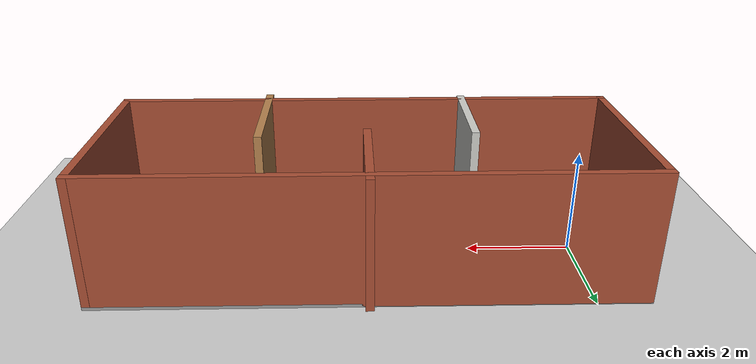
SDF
<sdf version='1.6'>
  <world name='default'>
    <plugin name="ros_interface_plugin" filename="librotors_gazebo_ros_interface_plugin.so"/>
    <light name='sun' type='directional'>
      <cast_shadows>1</cast_shadows>
      <pose frame=''>0 0 10 0 -0 0</pose>
      <diffuse>0.8 0.8 0.8 1</diffuse>
      <specular>0.2 0.2 0.2 1</specular>
      <attenuation>
        <range>1000</range>
        <constant>0.9</constant>
        <linear>0.01</linear>
        <quadratic>0.001</quadratic>
      </attenuation>
      <direction>-0.5 0.1 -0.9</direction>
    </light>
    <model name='bounding'>
    <pose frame=''>4 0 0 0 0 0</pose>
     <link name='link_0'>
      <pose frame=''>0 0 2.6 0 -0 0</pose>
      <inertial>
        <mass>1</mass>
        <inertia>
          <ixx>0.166667</ixx>
          <ixy>0</ixy>
          <ixz>0</ixz>
          <iyy>0.166667</iyy>
          <iyz>0</iyz>
          <izz>0.166667</izz>
        </inertia>
        <pose frame=''>0 0 0 0 -0 0</pose>
      </inertial>
      <self_collide>0</self_collide>
      <kinematic>0</kinematic>
      <visual name='ModelPreview_4::link_0::visual_1'>
        <pose frame=''>0 0 -0.1 0 -0 0</pose>
        <geometry>
          <box>
            <size>10 4 0.1</size>
          </box>
        </geometry>
        <material>
          <lighting>1</lighting>
          <script>
            <uri>file://media/materials/scripts/gazebo.material</uri>
            <name>Gazebo/Grey</name>
          </script>
          <ambient>0.3 0.3 0.3 1</ambient>
          <diffuse>0.7 0.7 0.7 1</diffuse>
          <specular>0.01 0.01 0.01 1</specular>
          <emissive>0 0 0 1</emissive>
          <shader type='vertex'>
            <normal_map>__default__</normal_map>
          </shader>
        </material>
        <cast_shadows>1</cast_shadows>
        <transparency>1</transparency>
      </visual>
      <visual name='visual'>
        <pose frame=''>0 0 0 0 -0 0</pose>
        <geometry>
          <box>
            <size>10 4 0.1</size>
          </box>
        </geometry>
        <material>
          <lighting>1</lighting>
          <script>
            <uri>file://media/materials/scripts/gazebo.material</uri>
            <name>Gazebo/Grey</name>
          </script>
          <ambient>0.3 0.3 0.3 1</ambient>
          <diffuse>0.7 0.7 0.7 1</diffuse>
          <specular>0.01 0.01 0.01 1</specular>
          <emissive>0 0 0 1</emissive>
          <shader type='vertex'>
            <normal_map>__default__</normal_map>
          </shader>
        </material>
        <cast_shadows>1</cast_shadows>
        <transparency>1</transparency>
      </visual>
      <collision name='collision'>
        <laser_retro>0</laser_retro>
        <max_contacts>10</max_contacts>
        <pose frame=''>0 0 0 0 -0 0</pose>
        <geometry>
          <box>
            <size>4 4 0.1</size>
          </box>
        </geometry>
        <surface>
          <friction>
            <ode>
              <mu>1</mu>
              <mu2>1</mu2>
              <fdir1>0 0 0</fdir1>
              <slip1>0</slip1>
              <slip2>0</slip2>
            </ode>
            <torsional>
              <coefficient>1</coefficient>
              <patch_radius>0</patch_radius>
              <surface_radius>0</surface_radius>
              <use_patch_radius>1</use_patch_radius>
              <ode>
                <slip>0</slip>
              </ode>
            </torsional>
          </friction>
          <bounce>
            <restitution_coefficient>0</restitution_coefficient>
            <threshold>1e+06</threshold>
          </bounce>
          <contact>
            <collide_without_contact>0</collide_without_contact>
            <collide_without_contact_bitmask>1</collide_without_contact_bitmask>
            <collide_bitmask>1</collide_bitmask>
            <ode>
              <soft_cfm>0</soft_cfm>
              <soft_erp>0.2</soft_erp>
              <kp>1e+13</kp>
              <kd>1</kd>
              <max_vel>0.01</max_vel>
              <min_depth>0</min_depth>
            </ode>
            <bullet>
              <split_impulse>1</split_impulse>
              <split_impulse_penetration_threshold>-0.01</split_impulse_penetration_threshold>
              <soft_cfm>0</soft_cfm>
              <soft_erp>0.2</soft_erp>
              <kp>1e+13</kp>
              <kd>1</kd>
            </bullet>
          </contact>
        </surface>
      </collision>
    </link>
    <link name='link_0_clone'>
      <pose frame=''>0 0 -0 0 -0 0</pose>
      <inertial>
        <mass>1</mass>
        <inertia>
          <ixx>0.166667</ixx>
          <ixy>0</ixy>
          <ixz>0</ixz>
          <iyy>0.166667</iyy>
          <iyz>0</iyz>
          <izz>0.166667</izz>
        </inertia>
        <pose frame=''>0 0 0 0 -0 0</pose>
      </inertial>
      <self_collide>0</self_collide>
      <kinematic>0</kinematic>
      <gravity>1</gravity>
      <visual name='ModelPreview_4::link_0_clone::visual_1'>
        <pose frame=''>0 0 0 0 -0 0</pose>
        <geometry>
          <box>
            <size>10 4 0.1</size>
          </box>
        </geometry>
        <material>
          <lighting>1</lighting>
          <script>
            <uri>file://media/materials/scripts/gazebo.material</uri>
            <name>Gazebo/Grey</name>
          </script>
          <ambient>1 1 1 1</ambient>
          <diffuse>1 1 1 1</diffuse>
          <specular>0.01 0.01 0.01 1</specular>
          <emissive>0 0 0 1</emissive>
          <shader type='vertex'>
            <normal_map>__default__</normal_map>
          </shader>
        </material>
        <cast_shadows>1</cast_shadows>
        <transparency>0</transparency>
      </visual>
      <collision name='collision'>
        <laser_retro>0</laser_retro>
        <max_contacts>10</max_contacts>
        <pose frame=''>0 0 0 0 -0 0</pose>
        <geometry>
          <box>
            <size>10 4 0.1</size>
          </box>
        </geometry>
        <surface>
          <friction>
            <ode>
              <mu>1</mu>
              <mu2>1</mu2>
              <fdir1>0 0 0</fdir1>
              <slip1>0</slip1>
              <slip2>0</slip2>
            </ode>
            <torsional>
              <coefficient>1</coefficient>
              <patch_radius>0</patch_radius>
              <surface_radius>0</surface_radius>
              <use_patch_radius>1</use_patch_radius>
              <ode>
                <slip>0</slip>
              </ode>
            </torsional>
          </friction>
          <bounce>
            <restitution_coefficient>0</restitution_coefficient>
            <threshold>1e+06</threshold>
          </bounce>
          <contact>
            <collide_without_contact>0</collide_without_contact>
            <collide_without_contact_bitmask>1</collide_without_contact_bitmask>
            <collide_bitmask>1</collide_bitmask>
            <ode>
              <soft_cfm>0</soft_cfm>
              <soft_erp>0.2</soft_erp>
              <kp>1e+13</kp>
              <kd>1</kd>
              <max_vel>0.01</max_vel>
              <min_depth>0</min_depth>
            </ode>
            <bullet>
              <split_impulse>1</split_impulse>
              <split_impulse_penetration_threshold>-0.01</split_impulse_penetration_threshold>
              <soft_cfm>0</soft_cfm>
              <soft_erp>0.2</soft_erp>
              <kp>1e+13</kp>
              <kd>1</kd>
            </bullet>
          </contact>
        </surface>
      </collision>
    </link>
    <link name='Wall_0'>
      <collision name='Wall_0_Collision'>
        <geometry>
          <box>
            <size>10 0.15 2.5</size>
          </box>
        </geometry>
        <pose frame=''>0 0 1.25 0 -0 0</pose>
      </collision>
      <visual name='Wall_0_Visual'>
        <pose frame=''>0 0 1.25 0 -0 0</pose>
        <geometry>
          <box>
            <size>10 0.15 2.5</size>
          </box>
        </geometry>
        <material>
          <script>
            <uri>file://media/materials/scripts/gazebo.material</uri>
            <name>Gazebo/Bricks</name>
          </script>
          <ambient>1 1 1 1</ambient>
        </material>
        <meta>
          <layer>0</layer>
        </meta>
      </visual>
      <pose frame=''>0 1.925 0 0 -0 3.14159</pose>
    </link>
    <link name='Wall_1'>
      <collision name='Wall_1_Collision'>
        <geometry>
          <box>
            <size>4 0.15 2.5</size>
          </box>
        </geometry>
        <pose frame=''>0 0 1.25 0 -0 0</pose>
      </collision>
      <visual name='Wall_1_Visual'>
        <pose frame=''>0 0 1.25 0 -0 0</pose>
        <geometry>
          <box>
            <size>4 0.15 2.5</size>
          </box>
        </geometry>
        <material>
          <script>
            <uri>file://media/materials/scripts/gazebo.material</uri>
            <name>Gazebo/Bricks</name>
          </script>
          <ambient>1 1 1 1</ambient>
        </material>
        <meta>
          <layer>0</layer>
        </meta>
      </visual>
      <pose frame=''>-4.925 0 0 0 -0 -1.5708</pose>
    </link>
    <link name='Wall_2'>
      <collision name='Wall_2_Collision'>
        <geometry>
          <box>
            <size>10 0.15 2.5</size>
          </box>
        </geometry>
        <pose frame=''>0 0 1.25 0 -0 0</pose>
      </collision>
      <visual name='Wall_2_Visual'>
        <pose frame=''>0 0 1.25 0 -0 0</pose>
        <geometry>
          <box>
            <size>10 0.15 2.5</size>
          </box>
        </geometry>
        <material>
          <script>
            <uri>file://media/materials/scripts/gazebo.material</uri>
            <name>Gazebo/Bricks</name>
          </script>
          <ambient>1 1 1 1</ambient>
        </material>
        <meta>
          <layer>0</layer>
        </meta>
      </visual>
      <pose frame=''>0 -1.925 0 0 -0 0</pose>
    </link>
    <link name='Wall_3'>
      <collision name='Wall_3_Collision'>
        <geometry>
          <box>
            <size>4 0.15 2.5</size>
          </box>
        </geometry>
        <pose frame=''>0 0 1.25 0 -0 0</pose>
      </collision>
      <visual name='Wall_3_Visual'>
        <pose frame=''>0 0 1.25 0 -0 0</pose>
        <geometry>
          <box>
            <size>4 0.15 2.5</size>
          </box>
        </geometry>
        <material>
          <script>
            <uri>file://media/materials/scripts/gazebo.material</uri>
            <name>Gazebo/Bricks</name>
          </script>
          <ambient>1 1 1 1</ambient>
        </material>
        <meta>
          <layer>0</layer>
        </meta>
      </visual>
      <pose frame=''>4.925 0 0 0 -0 1.5708</pose>
    </link>
    <static>1</static>
  </model>
  <model name='wall1'>
    <pose frame='world'>2 -1 0 0 -0 0</pose>
    <link name='Wall_5'>
     <inertial>
        <mass>1000</mass>
        <pose frame=''>0 0 0 0 -0 0</pose>
        <inertia>
          <ixx>522.708</ixx>
          <ixy>0</ixy>
          <ixz>0</ixz>
          <iyy>961.667</iyy>
          <iyz>0</iyz>
          <izz>442.708</izz>
        </inertia>
      </inertial>
      <collision name='Wall_5_Collision'>
        <geometry>
          <box>
            <size>2.2 0.15 2.5</size>
          </box>
        </geometry>
        <pose frame=''>0 0 1.25 0 -0 0</pose>
      </collision>
      <visual name='Wall_5_Visual'>
        <pose frame=''>0 0 1.25 0 -0 0</pose>
        <geometry>
          <box>
            <size>2.2 0.15 2.5</size>
          </box>
        </geometry>
        <material>
          <script>
            <uri>file://media/materials/scripts/gazebo.material</uri>
            <name>Gazebo/CeilingTiled</name>
          </script>
          <ambient>1 1 1 1</ambient>
        </material>
        <meta>
          <layer>0</layer>
        </meta>
      </visual>
      <pose frame=''>0 -0 0 0 -0 -1.5708</pose>
    </link>
  </model>
  <model name='wall2'>
    <pose frame='world'>4 1 0 0 -0 0</pose>
    <link name='Wall_5'>
     <inertial>
        <mass>1000</mass>
        <pose frame=''>0 0 0 0 -0 0</pose>
        <inertia>
          <ixx>522.708</ixx>
          <ixy>0</ixy>
          <ixz>0</ixz>
          <iyy>961.667</iyy>
          <iyz>0</iyz>
          <izz>442.708</izz>
        </inertia>
      </inertial>
      <collision name='Wall_5_Collision'>
        <geometry>
          <box>
            <size>2.3 0.15 2.5</size>
          </box>
        </geometry>
        <pose frame=''>0 0 1.25 0 -0 0</pose>
      </collision>
      <visual name='Wall_5_Visual'>
        <pose frame=''>0 0 1.25 0 -0 0</pose>
        <geometry>
          <box>
            <size>2.3 0.15 2.5</size>
          </box>
        </geometry>
        <material>
          <script>
            <uri>file://media/materials/scripts/gazebo.material</uri>
            <name>Gazebo/Bricks</name>
          </script>
          <ambient>1 1 1 1</ambient>
        </material>
        <meta>
          <layer>0</layer>
        </meta>
      </visual>
      <pose frame=''>0 -0 0 0 -0 -1.5708</pose>
    </link>
  </model>
  <model name='wall3'>
    <pose frame=''>6 -1 0 0 0 0</pose>
    <link name='Wall_5'>
     <inertial>
        <mass>1000</mass>
        <pose frame=''>0 0 0 0 -0 0</pose>
        <inertia>
          <ixx>522.708</ixx>
          <ixy>0</ixy>
          <ixz>0</ixz>
          <iyy>961.667</iyy>
          <iyz>0</iyz>
          <izz>442.708</izz>
        </inertia>
      </inertial>
      <collision name='Wall_5_Collision'>
        <geometry>
          <box>
            <size>2.5 0.15 2.5</size>
          </box>
        </geometry>
        <pose frame=''>0 0 1.25 0 -0 0</pose>
      </collision>
      <visual name='Wall_5_Visual'>
        <pose frame=''>0 0 1.25 0 -0 0</pose>
        <geometry>
          <box>
            <size>2.5 0.15 2.5</size>
          </box>
        </geometry>
        <material>
          <script>
            <uri>file://media/materials/scripts/gazebo.material</uri>
            <name>Gazebo/Wood</name>
          </script>
          <ambient>1 1 1 1</ambient>
        </material>
        <meta>
          <layer>0</layer>
        </meta>
      </visual>
      <pose frame=''>0 -0 0 0 -0 -1.5708</pose>
    </link>
  </model>
    <model name='ground_plane'>
      <static>1</static>
      <link name='link'>
        <collision name='collision'>
          <geometry>
            <plane>
              <normal>0 0 1</normal>
              <size>100 100</size>
            </plane>
          </geometry>
          <surface>
            <friction>
              <ode>
                <mu>100</mu>
                <mu2>50</mu2>
              </ode>
              <torsional>
                <ode/>
              </torsional>
            </friction>
            <contact>
              <ode/>
            </contact>
            <bounce/>
          </surface>
          <max_contacts>10</max_contacts>
        </collision>
        <visual name='visual'>
          <cast_shadows>0</cast_shadows>
          <geometry>
            <plane>
              <normal>0 0 1</normal>
              <size>100 100</size>
            </plane>
          </geometry>
          <material>
            <script>
              <uri>file://media/materials/scripts/gazebo.material</uri>
              <name>Gazebo/Grey</name>
            </script>
          </material>
        </visual>
        <self_collide>0</self_collide>
        <enable_wind>0</enable_wind>
        <kinematic>0</kinematic>
      </link>
    </model>
     <model name="target">
      <pose>1.2 1.32 1.5 0 0 0</pose>
      <static>0</static>
      <link name="link">
        <gravity>0</gravity>
        <collision name="collision">
          <geometry>
          <sphere>
            <radius>0.051</radius>
          </sphere>
        </geometry>
          <surface>
            <contact>
              <collide_without_contact>1</collide_without_contact>
            </contact>
          </surface>
        </collision>
      </link>
    </model>

    <gui fullscreen='0'>
      <camera name='user_camera'>
        <pose frame=''>16.8215 -12.0406 5.15207 0 0.275643 2.35619</pose>
        <view_controller>orbit</view_controller>
        <projection_type>perspective</projection_type>
      </camera>
    </gui>
  </world>
</sdf>
